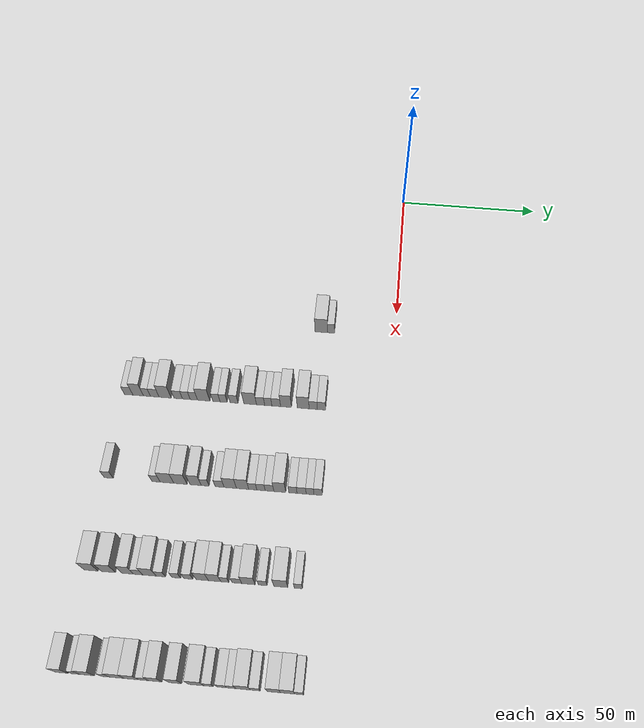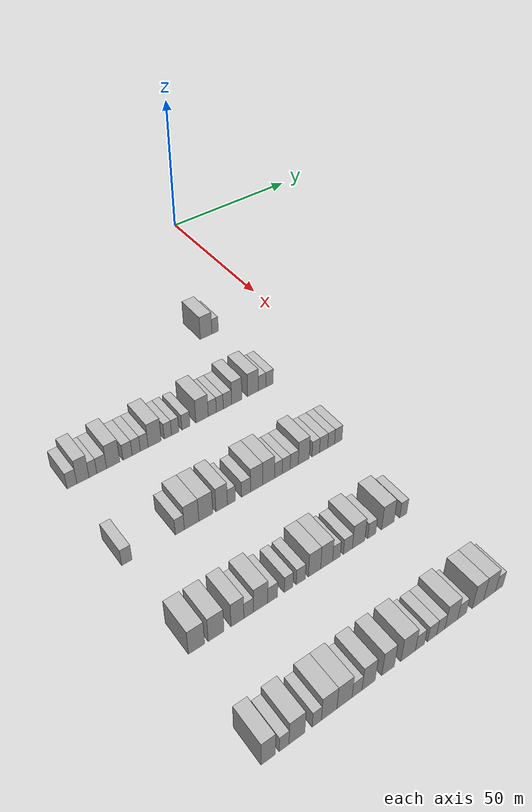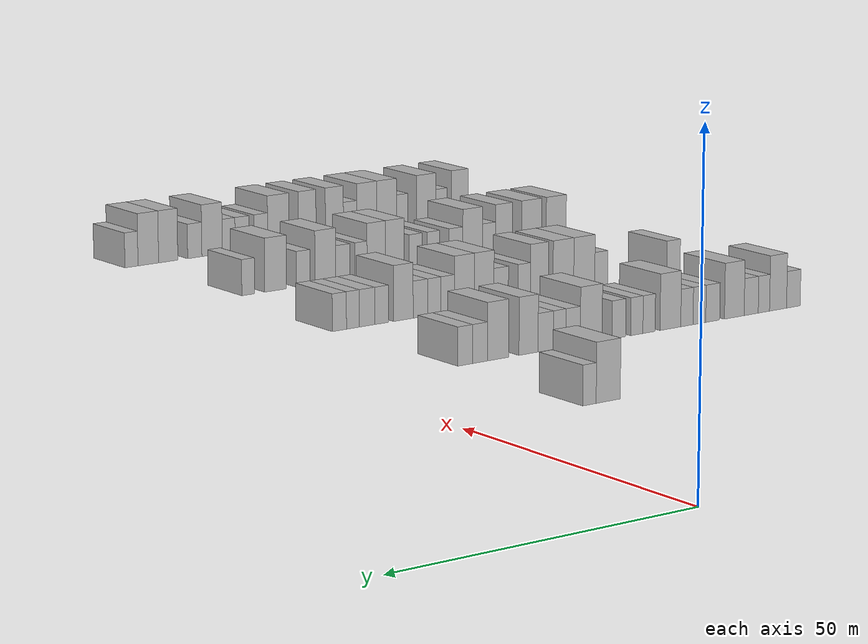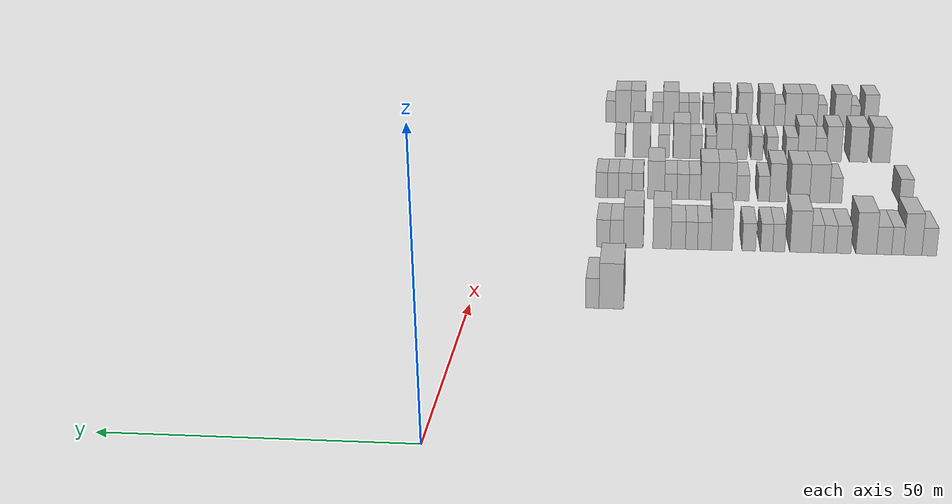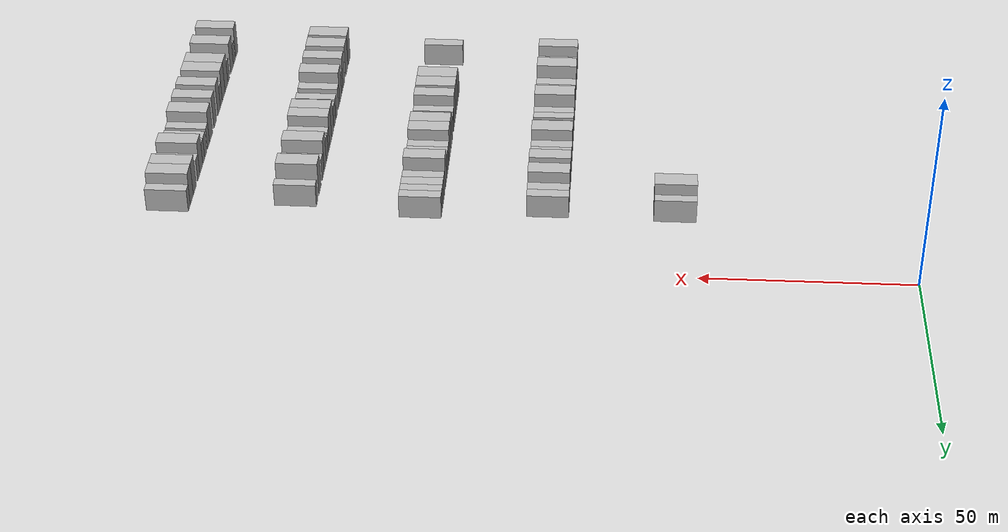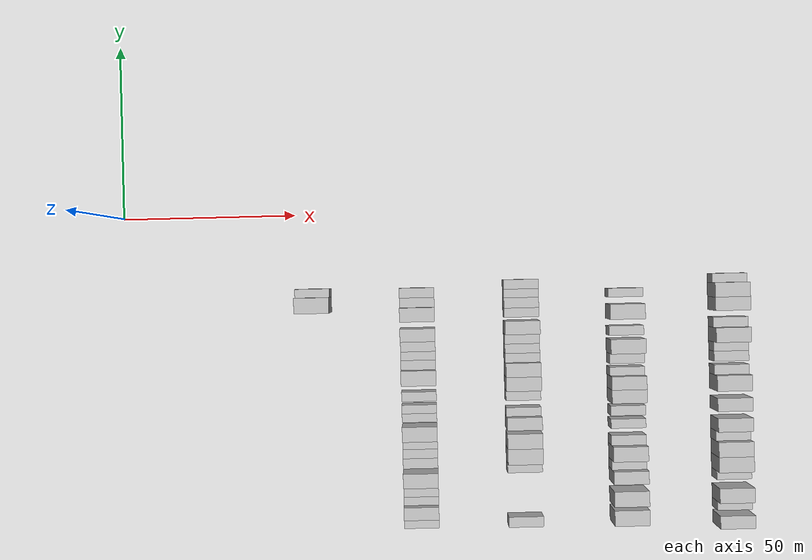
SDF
<sdf version="1.6">
 <world name="default">
  <model name="building_337">
   <static>1</static>
   <pose>55.0000 -26.2284 0 0.000000 0.000000 0.000000</pose>
   <link name="link">
    <pose>0 0 4.50 0 0 0</pose>
    <collision name="collision"><geometry><box><size>10.0000 4.4825 9.0000</size></box></geometry></collision>
    <visual name="visual">
     <cast_shadows>0</cast_shadows>
     <geometry><box><size>10.0000 4.4825 9.0000</size></box></geometry>
     <material>
      <script>
       <uri>model://HANNAS_wall/materials/scripts</uri>
       <uri>model://HANNAS_wall/materials/textures</uri>
       <name>vrc/HANNAS_wall</name>
      </script>
     </material>
    </visual>
   </link>
  </model>
  <model name="building_338">
   <static>1</static>
   <pose>55.0000 -22.7556 0 0.000000 0.000000 0.000000</pose>
   <link name="link">
    <pose>0 0 3.00 0 0 0</pose>
    <collision name="collision"><geometry><box><size>10.0000 2.4629 6.0000</size></box></geometry></collision>
    <visual name="visual">
     <cast_shadows>0</cast_shadows>
     <geometry><box><size>10.0000 2.4629 6.0000</size></box></geometry>
     <material>
      <script>
       <uri>model://HANNAS_wall/materials/scripts</uri>
       <uri>model://HANNAS_wall/materials/textures</uri>
       <name>vrc/HANNAS_wall</name>
      </script>
     </material>
    </visual>
   </link>
  </model>
  <model name="building_548">
   <static>1</static>
   <pose>85.0000 -89.4390 0 0.000000 0.000000 0.000000</pose>
   <link name="link">
    <pose>0 0 3.00 0 0 0</pose>
    <collision name="collision"><geometry><box><size>10.0000 2.9437 6.0000</size></box></geometry></collision>
    <visual name="visual">
     <cast_shadows>0</cast_shadows>
     <geometry><box><size>10.0000 2.9437 6.0000</size></box></geometry>
     <material>
      <script>
       <uri>model://HANNAS_wall/materials/scripts</uri>
       <uri>model://HANNAS_wall/materials/textures</uri>
       <name>vrc/HANNAS_wall</name>
      </script>
     </material>
    </visual>
   </link>
  </model>
  <model name="building_549">
   <static>1</static>
   <pose>85.0000 -86.1389 0 0.000000 0.000000 0.000000</pose>
   <link name="link">
    <pose>0 0 4.50 0 0 0</pose>
    <collision name="collision"><geometry><box><size>10.0000 3.6565 9.0000</size></box></geometry></collision>
    <visual name="visual">
     <cast_shadows>0</cast_shadows>
     <geometry><box><size>10.0000 3.6565 9.0000</size></box></geometry>
     <material>
      <script>
       <uri>model://HANNAS_wall/materials/scripts</uri>
       <uri>model://HANNAS_wall/materials/textures</uri>
       <name>vrc/HANNAS_wall</name>
      </script>
     </material>
    </visual>
   </link>
  </model>
  <model name="building_550">
   <static>1</static>
   <pose>85.0000 -83.1061 0 0.000000 0.000000 0.000000</pose>
   <link name="link">
    <pose>0 0 3.00 0 0 0</pose>
    <collision name="collision"><geometry><box><size>10.0000 2.4090 6.0000</size></box></geometry></collision>
    <visual name="visual">
     <cast_shadows>0</cast_shadows>
     <geometry><box><size>10.0000 2.4090 6.0000</size></box></geometry>
     <material>
      <script>
       <uri>model://HANNAS_wall/materials/scripts</uri>
       <uri>model://HANNAS_wall/materials/textures</uri>
       <name>vrc/HANNAS_wall</name>
      </script>
     </material>
    </visual>
   </link>
  </model>
  <model name="building_551">
   <static>1</static>
   <pose>85.0000 -80.4048 0 0.000000 0.000000 0.000000</pose>
   <link name="link">
    <pose>0 0 3.00 0 0 0</pose>
    <collision name="collision"><geometry><box><size>10.0000 2.9938 6.0000</size></box></geometry></collision>
    <visual name="visual">
     <cast_shadows>0</cast_shadows>
     <geometry><box><size>10.0000 2.9938 6.0000</size></box></geometry>
     <material>
      <script>
       <uri>model://HANNAS_wall/materials/scripts</uri>
       <uri>model://HANNAS_wall/materials/textures</uri>
       <name>vrc/HANNAS_wall</name>
      </script>
     </material>
    </visual>
   </link>
  </model>
  <model name="building_552">
   <static>1</static>
   <pose>85.0000 -76.8361 0 0.000000 0.000000 0.000000</pose>
   <link name="link">
    <pose>0 0 4.50 0 0 0</pose>
    <collision name="collision"><geometry><box><size>10.0000 4.1435 9.0000</size></box></geometry></collision>
    <visual name="visual">
     <cast_shadows>0</cast_shadows>
     <geometry><box><size>10.0000 4.1435 9.0000</size></box></geometry>
     <material>
      <script>
       <uri>model://HANNAS_wall/materials/scripts</uri>
       <uri>model://HANNAS_wall/materials/textures</uri>
       <name>vrc/HANNAS_wall</name>
      </script>
     </material>
    </visual>
   </link>
  </model>
  <model name="building_553">
   <static>1</static>
   <pose>85.0000 -72.3120 0 0.000000 0.000000 0.000000</pose>
   <link name="link">
    <pose>0 0 3.00 0 0 0</pose>
    <collision name="collision"><geometry><box><size>10.0000 2.9047 6.0000</size></box></geometry></collision>
    <visual name="visual">
     <cast_shadows>0</cast_shadows>
     <geometry><box><size>10.0000 2.9047 6.0000</size></box></geometry>
     <material>
      <script>
       <uri>model://HANNAS_wall/materials/scripts</uri>
       <uri>model://HANNAS_wall/materials/textures</uri>
       <name>vrc/HANNAS_wall</name>
      </script>
     </material>
    </visual>
   </link>
  </model>
  <model name="building_554">
   <static>1</static>
   <pose>85.0000 -69.5392 0 0.000000 0.000000 0.000000</pose>
   <link name="link">
    <pose>0 0 3.00 0 0 0</pose>
    <collision name="collision"><geometry><box><size>10.0000 2.6408 6.0000</size></box></geometry></collision>
    <visual name="visual">
     <cast_shadows>0</cast_shadows>
     <geometry><box><size>10.0000 2.6408 6.0000</size></box></geometry>
     <material>
      <script>
       <uri>model://HANNAS_wall/materials/scripts</uri>
       <uri>model://HANNAS_wall/materials/textures</uri>
       <name>vrc/HANNAS_wall</name>
      </script>
     </material>
    </visual>
   </link>
  </model>
  <model name="building_555">
   <static>1</static>
   <pose>85.0000 -66.9521 0 0.000000 0.000000 0.000000</pose>
   <link name="link">
    <pose>0 0 3.00 0 0 0</pose>
    <collision name="collision"><geometry><box><size>10.0000 2.5333 6.0000</size></box></geometry></collision>
    <visual name="visual">
     <cast_shadows>0</cast_shadows>
     <geometry><box><size>10.0000 2.5333 6.0000</size></box></geometry>
     <material>
      <script>
       <uri>model://HANNAS_wall/materials/scripts</uri>
       <uri>model://HANNAS_wall/materials/textures</uri>
       <name>vrc/HANNAS_wall</name>
      </script>
     </material>
    </visual>
   </link>
  </model>
  <model name="building_556">
   <static>1</static>
   <pose>85.0000 -63.5560 0 0.000000 0.000000 0.000000</pose>
   <link name="link">
    <pose>0 0 4.50 0 0 0</pose>
    <collision name="collision"><geometry><box><size>10.0000 4.2589 9.0000</size></box></geometry></collision>
    <visual name="visual">
     <cast_shadows>0</cast_shadows>
     <geometry><box><size>10.0000 4.2589 9.0000</size></box></geometry>
     <material>
      <script>
       <uri>model://HANNAS_wall/materials/scripts</uri>
       <uri>model://HANNAS_wall/materials/textures</uri>
       <name>vrc/HANNAS_wall</name>
      </script>
     </material>
    </visual>
   </link>
  </model>
  <model name="building_557">
   <static>1</static>
   <pose>85.0000 -59.1907 0 0.000000 0.000000 0.000000</pose>
   <link name="link">
    <pose>0 0 3.00 0 0 0</pose>
    <collision name="collision"><geometry><box><size>10.0000 2.4717 6.0000</size></box></geometry></collision>
    <visual name="visual">
     <cast_shadows>0</cast_shadows>
     <geometry><box><size>10.0000 2.4717 6.0000</size></box></geometry>
     <material>
      <script>
       <uri>model://HANNAS_wall/materials/scripts</uri>
       <uri>model://HANNAS_wall/materials/textures</uri>
       <name>vrc/HANNAS_wall</name>
      </script>
     </material>
    </visual>
   </link>
  </model>
  <model name="building_558">
   <static>1</static>
   <pose>85.0000 -56.7219 0 0.000000 0.000000 0.000000</pose>
   <link name="link">
    <pose>0 0 3.00 0 0 0</pose>
    <collision name="collision"><geometry><box><size>10.0000 2.4658 6.0000</size></box></geometry></collision>
    <visual name="visual">
     <cast_shadows>0</cast_shadows>
     <geometry><box><size>10.0000 2.4658 6.0000</size></box></geometry>
     <material>
      <script>
       <uri>model://HANNAS_wall/materials/scripts</uri>
       <uri>model://HANNAS_wall/materials/textures</uri>
       <name>vrc/HANNAS_wall</name>
      </script>
     </material>
    </visual>
   </link>
  </model>
  <model name="building_559">
   <static>1</static>
   <pose>85.0000 -53.1243 0 0.000000 0.000000 0.000000</pose>
   <link name="link">
    <pose>0 0 3.00 0 0 0</pose>
    <collision name="collision"><geometry><box><size>10.0000 2.7295 6.0000</size></box></geometry></collision>
    <visual name="visual">
     <cast_shadows>0</cast_shadows>
     <geometry><box><size>10.0000 2.7295 6.0000</size></box></geometry>
     <material>
      <script>
       <uri>model://HANNAS_wall/materials/scripts</uri>
       <uri>model://HANNAS_wall/materials/textures</uri>
       <name>vrc/HANNAS_wall</name>
      </script>
     </material>
    </visual>
   </link>
  </model>
  <model name="building_560">
   <static>1</static>
   <pose>85.0000 -47.6033 0 0.000000 0.000000 0.000000</pose>
   <link name="link">
    <pose>0 0 4.50 0 0 0</pose>
    <collision name="collision"><geometry><box><size>10.0000 4.3124 9.0000</size></box></geometry></collision>
    <visual name="visual">
     <cast_shadows>0</cast_shadows>
     <geometry><box><size>10.0000 4.3124 9.0000</size></box></geometry>
     <material>
      <script>
       <uri>model://HANNAS_wall/materials/scripts</uri>
       <uri>model://HANNAS_wall/materials/textures</uri>
       <name>vrc/HANNAS_wall</name>
      </script>
     </material>
    </visual>
   </link>
  </model>
  <model name="building_561">
   <static>1</static>
   <pose>85.0000 -44.0436 0 0.000000 0.000000 0.000000</pose>
   <link name="link">
    <pose>0 0 3.00 0 0 0</pose>
    <collision name="collision"><geometry><box><size>10.0000 2.8070 6.0000</size></box></geometry></collision>
    <visual name="visual">
     <cast_shadows>0</cast_shadows>
     <geometry><box><size>10.0000 2.8070 6.0000</size></box></geometry>
     <material>
      <script>
       <uri>model://HANNAS_wall/materials/scripts</uri>
       <uri>model://HANNAS_wall/materials/textures</uri>
       <name>vrc/HANNAS_wall</name>
      </script>
     </material>
    </visual>
   </link>
  </model>
  <model name="building_562">
   <static>1</static>
   <pose>85.0000 -41.4100 0 0.000000 0.000000 0.000000</pose>
   <link name="link">
    <pose>0 0 3.00 0 0 0</pose>
    <collision name="collision"><geometry><box><size>10.0000 2.4603 6.0000</size></box></geometry></collision>
    <visual name="visual">
     <cast_shadows>0</cast_shadows>
     <geometry><box><size>10.0000 2.4603 6.0000</size></box></geometry>
     <material>
      <script>
       <uri>model://HANNAS_wall/materials/scripts</uri>
       <uri>model://HANNAS_wall/materials/textures</uri>
       <name>vrc/HANNAS_wall</name>
      </script>
     </material>
    </visual>
   </link>
  </model>
  <model name="building_563">
   <static>1</static>
   <pose>85.0000 -38.6884 0 0.000000 0.000000 0.000000</pose>
   <link name="link">
    <pose>0 0 3.00 0 0 0</pose>
    <collision name="collision"><geometry><box><size>10.0000 2.9829 6.0000</size></box></geometry></collision>
    <visual name="visual">
     <cast_shadows>0</cast_shadows>
     <geometry><box><size>10.0000 2.9829 6.0000</size></box></geometry>
     <material>
      <script>
       <uri>model://HANNAS_wall/materials/scripts</uri>
       <uri>model://HANNAS_wall/materials/textures</uri>
       <name>vrc/HANNAS_wall</name>
      </script>
     </material>
    </visual>
   </link>
  </model>
  <model name="building_564">
   <static>1</static>
   <pose>85.0000 -35.3502 0 0.000000 0.000000 0.000000</pose>
   <link name="link">
    <pose>0 0 4.50 0 0 0</pose>
    <collision name="collision"><geometry><box><size>10.0000 3.6935 9.0000</size></box></geometry></collision>
    <visual name="visual">
     <cast_shadows>0</cast_shadows>
     <geometry><box><size>10.0000 3.6935 9.0000</size></box></geometry>
     <material>
      <script>
       <uri>model://HANNAS_wall/materials/scripts</uri>
       <uri>model://HANNAS_wall/materials/textures</uri>
       <name>vrc/HANNAS_wall</name>
      </script>
     </material>
    </visual>
   </link>
  </model>
  <model name="building_565">
   <static>1</static>
   <pose>85.0000 -29.4945 0 0.000000 0.000000 0.000000</pose>
   <link name="link">
    <pose>0 0 4.50 0 0 0</pose>
    <collision name="collision"><geometry><box><size>10.0000 4.0180 9.0000</size></box></geometry></collision>
    <visual name="visual">
     <cast_shadows>0</cast_shadows>
     <geometry><box><size>10.0000 4.0180 9.0000</size></box></geometry>
     <material>
      <script>
       <uri>model://HANNAS_wall/materials/scripts</uri>
       <uri>model://HANNAS_wall/materials/textures</uri>
       <name>vrc/HANNAS_wall</name>
      </script>
     </material>
    </visual>
   </link>
  </model>
  <model name="building_566">
   <static>1</static>
   <pose>85.0000 -26.0917 0 0.000000 0.000000 0.000000</pose>
   <link name="link">
    <pose>0 0 3.00 0 0 0</pose>
    <collision name="collision"><geometry><box><size>10.0000 2.7875 6.0000</size></box></geometry></collision>
    <visual name="visual">
     <cast_shadows>0</cast_shadows>
     <geometry><box><size>10.0000 2.7875 6.0000</size></box></geometry>
     <material>
      <script>
       <uri>model://HANNAS_wall/materials/scripts</uri>
       <uri>model://HANNAS_wall/materials/textures</uri>
       <name>vrc/HANNAS_wall</name>
      </script>
     </material>
    </visual>
   </link>
  </model>
  <model name="building_567">
   <static>1</static>
   <pose>85.0000 -23.2987 0 0.000000 0.000000 0.000000</pose>
   <link name="link">
    <pose>0 0 3.00 0 0 0</pose>
    <collision name="collision"><geometry><box><size>10.0000 2.7985 6.0000</size></box></geometry></collision>
    <visual name="visual">
     <cast_shadows>0</cast_shadows>
     <geometry><box><size>10.0000 2.7985 6.0000</size></box></geometry>
     <material>
      <script>
       <uri>model://HANNAS_wall/materials/scripts</uri>
       <uri>model://HANNAS_wall/materials/textures</uri>
       <name>vrc/HANNAS_wall</name>
      </script>
     </material>
    </visual>
   </link>
  </model>
  <model name="building_786">
   <static>1</static>
   <pose>115.0000 -89.8218 0 0.000000 0.000000 0.000000</pose>
   <link name="link">
    <pose>0 0 3.00 0 0 0</pose>
    <collision name="collision"><geometry><box><size>10.0000 2.9431 6.0000</size></box></geometry></collision>
    <visual name="visual">
     <cast_shadows>0</cast_shadows>
     <geometry><box><size>10.0000 2.9431 6.0000</size></box></geometry>
     <material>
      <script>
       <uri>model://HANNAS_wall/materials/scripts</uri>
       <uri>model://HANNAS_wall/materials/textures</uri>
       <name>vrc/HANNAS_wall</name>
      </script>
     </material>
    </visual>
   </link>
  </model>
  <model name="building_787">
   <static>1</static>
   <pose>115.0000 -74.2443 0 0.000000 0.000000 0.000000</pose>
   <link name="link">
    <pose>0 0 3.00 0 0 0</pose>
    <collision name="collision"><geometry><box><size>10.0000 2.7373 6.0000</size></box></geometry></collision>
    <visual name="visual">
     <cast_shadows>0</cast_shadows>
     <geometry><box><size>10.0000 2.7373 6.0000</size></box></geometry>
     <material>
      <script>
       <uri>model://HANNAS_wall/materials/scripts</uri>
       <uri>model://HANNAS_wall/materials/textures</uri>
       <name>vrc/HANNAS_wall</name>
      </script>
     </material>
    </visual>
   </link>
  </model>
  <model name="building_788">
   <static>1</static>
   <pose>115.0000 -70.6516 0 0.000000 0.000000 0.000000</pose>
   <link name="link">
    <pose>0 0 4.50 0 0 0</pose>
    <collision name="collision"><geometry><box><size>10.0000 4.4482 9.0000</size></box></geometry></collision>
    <visual name="visual">
     <cast_shadows>0</cast_shadows>
     <geometry><box><size>10.0000 4.4482 9.0000</size></box></geometry>
     <material>
      <script>
       <uri>model://HANNAS_wall/materials/scripts</uri>
       <uri>model://HANNAS_wall/materials/textures</uri>
       <name>vrc/HANNAS_wall</name>
      </script>
     </material>
    </visual>
   </link>
  </model>
  <model name="building_789">
   <static>1</static>
   <pose>115.0000 -66.2643 0 0.000000 0.000000 0.000000</pose>
   <link name="link">
    <pose>0 0 4.50 0 0 0</pose>
    <collision name="collision"><geometry><box><size>10.0000 4.3263 9.0000</size></box></geometry></collision>
    <visual name="visual">
     <cast_shadows>0</cast_shadows>
     <geometry><box><size>10.0000 4.3263 9.0000</size></box></geometry>
     <material>
      <script>
       <uri>model://HANNAS_wall/materials/scripts</uri>
       <uri>model://HANNAS_wall/materials/textures</uri>
       <name>vrc/HANNAS_wall</name>
      </script>
     </material>
    </visual>
   </link>
  </model>
  <model name="building_790">
   <static>1</static>
   <pose>115.0000 -61.2726 0 0.000000 0.000000 0.000000</pose>
   <link name="link">
    <pose>0 0 4.50 0 0 0</pose>
    <collision name="collision"><geometry><box><size>10.0000 3.6573 9.0000</size></box></geometry></collision>
    <visual name="visual">
     <cast_shadows>0</cast_shadows>
     <geometry><box><size>10.0000 3.6573 9.0000</size></box></geometry>
     <material>
      <script>
       <uri>model://HANNAS_wall/materials/scripts</uri>
       <uri>model://HANNAS_wall/materials/textures</uri>
       <name>vrc/HANNAS_wall</name>
      </script>
     </material>
    </visual>
   </link>
  </model>
  <model name="building_791">
   <static>1</static>
   <pose>115.0000 -58.1646 0 0.000000 0.000000 0.000000</pose>
   <link name="link">
    <pose>0 0 3.00 0 0 0</pose>
    <collision name="collision"><geometry><box><size>10.0000 2.5587 6.0000</size></box></geometry></collision>
    <visual name="visual">
     <cast_shadows>0</cast_shadows>
     <geometry><box><size>10.0000 2.5587 6.0000</size></box></geometry>
     <material>
      <script>
       <uri>model://HANNAS_wall/materials/scripts</uri>
       <uri>model://HANNAS_wall/materials/textures</uri>
       <name>vrc/HANNAS_wall</name>
      </script>
     </material>
    </visual>
   </link>
  </model>
  <model name="building_792">
   <static>1</static>
   <pose>115.0000 -53.4179 0 0.000000 0.000000 0.000000</pose>
   <link name="link">
    <pose>0 0 3.00 0 0 0</pose>
    <collision name="collision"><geometry><box><size>10.0000 2.9348 6.0000</size></box></geometry></collision>
    <visual name="visual">
     <cast_shadows>0</cast_shadows>
     <geometry><box><size>10.0000 2.9348 6.0000</size></box></geometry>
     <material>
      <script>
       <uri>model://HANNAS_wall/materials/scripts</uri>
       <uri>model://HANNAS_wall/materials/textures</uri>
       <name>vrc/HANNAS_wall</name>
      </script>
     </material>
    </visual>
   </link>
  </model>
  <model name="building_793">
   <static>1</static>
   <pose>115.0000 -49.9457 0 0.000000 0.000000 0.000000</pose>
   <link name="link">
    <pose>0 0 4.50 0 0 0</pose>
    <collision name="collision"><geometry><box><size>10.0000 4.0096 9.0000</size></box></geometry></collision>
    <visual name="visual">
     <cast_shadows>0</cast_shadows>
     <geometry><box><size>10.0000 4.0096 9.0000</size></box></geometry>
     <material>
      <script>
       <uri>model://HANNAS_wall/materials/scripts</uri>
       <uri>model://HANNAS_wall/materials/textures</uri>
       <name>vrc/HANNAS_wall</name>
      </script>
     </material>
    </visual>
   </link>
  </model>
  <model name="building_794">
   <static>1</static>
   <pose>115.0000 -45.9501 0 0.000000 0.000000 0.000000</pose>
   <link name="link">
    <pose>0 0 4.50 0 0 0</pose>
    <collision name="collision"><geometry><box><size>10.0000 3.9817 9.0000</size></box></geometry></collision>
    <visual name="visual">
     <cast_shadows>0</cast_shadows>
     <geometry><box><size>10.0000 3.9817 9.0000</size></box></geometry>
     <material>
      <script>
       <uri>model://HANNAS_wall/materials/scripts</uri>
       <uri>model://HANNAS_wall/materials/textures</uri>
       <name>vrc/HANNAS_wall</name>
      </script>
     </material>
    </visual>
   </link>
  </model>
  <model name="building_795">
   <static>1</static>
   <pose>115.0000 -42.6340 0 0.000000 0.000000 0.000000</pose>
   <link name="link">
    <pose>0 0 3.00 0 0 0</pose>
    <collision name="collision"><geometry><box><size>10.0000 2.6505 6.0000</size></box></geometry></collision>
    <visual name="visual">
     <cast_shadows>0</cast_shadows>
     <geometry><box><size>10.0000 2.6505 6.0000</size></box></geometry>
     <material>
      <script>
       <uri>model://HANNAS_wall/materials/scripts</uri>
       <uri>model://HANNAS_wall/materials/textures</uri>
       <name>vrc/HANNAS_wall</name>
      </script>
     </material>
    </visual>
   </link>
  </model>
  <model name="building_796">
   <static>1</static>
   <pose>115.0000 -39.9617 0 0.000000 0.000000 0.000000</pose>
   <link name="link">
    <pose>0 0 3.00 0 0 0</pose>
    <collision name="collision"><geometry><box><size>10.0000 2.6940 6.0000</size></box></geometry></collision>
    <visual name="visual">
     <cast_shadows>0</cast_shadows>
     <geometry><box><size>10.0000 2.6940 6.0000</size></box></geometry>
     <material>
      <script>
       <uri>model://HANNAS_wall/materials/scripts</uri>
       <uri>model://HANNAS_wall/materials/textures</uri>
       <name>vrc/HANNAS_wall</name>
      </script>
     </material>
    </visual>
   </link>
  </model>
  <model name="building_797">
   <static>1</static>
   <pose>115.0000 -37.2013 0 0.000000 0.000000 0.000000</pose>
   <link name="link">
    <pose>0 0 3.00 0 0 0</pose>
    <collision name="collision"><geometry><box><size>10.0000 2.8269 6.0000</size></box></geometry></collision>
    <visual name="visual">
     <cast_shadows>0</cast_shadows>
     <geometry><box><size>10.0000 2.8269 6.0000</size></box></geometry>
     <material>
      <script>
       <uri>model://HANNAS_wall/materials/scripts</uri>
       <uri>model://HANNAS_wall/materials/textures</uri>
       <name>vrc/HANNAS_wall</name>
      </script>
     </material>
    </visual>
   </link>
  </model>
  <model name="building_798">
   <static>1</static>
   <pose>115.0000 -33.8674 0 0.000000 0.000000 0.000000</pose>
   <link name="link">
    <pose>0 0 4.50 0 0 0</pose>
    <collision name="collision"><geometry><box><size>10.0000 3.8409 9.0000</size></box></geometry></collision>
    <visual name="visual">
     <cast_shadows>0</cast_shadows>
     <geometry><box><size>10.0000 3.8409 9.0000</size></box></geometry>
     <material>
      <script>
       <uri>model://HANNAS_wall/materials/scripts</uri>
       <uri>model://HANNAS_wall/materials/textures</uri>
       <name>vrc/HANNAS_wall</name>
      </script>
     </material>
    </visual>
   </link>
  </model>
  <model name="building_799">
   <static>1</static>
   <pose>115.0000 -29.6203 0 0.000000 0.000000 0.000000</pose>
   <link name="link">
    <pose>0 0 3.00 0 0 0</pose>
    <collision name="collision"><geometry><box><size>10.0000 2.6532 6.0000</size></box></geometry></collision>
    <visual name="visual">
     <cast_shadows>0</cast_shadows>
     <geometry><box><size>10.0000 2.6532 6.0000</size></box></geometry>
     <material>
      <script>
       <uri>model://HANNAS_wall/materials/scripts</uri>
       <uri>model://HANNAS_wall/materials/textures</uri>
       <name>vrc/HANNAS_wall</name>
      </script>
     </material>
    </visual>
   </link>
  </model>
  <model name="building_800">
   <static>1</static>
   <pose>115.0000 -26.8159 0 0.000000 0.000000 0.000000</pose>
   <link name="link">
    <pose>0 0 3.00 0 0 0</pose>
    <collision name="collision"><geometry><box><size>10.0000 2.9557 6.0000</size></box></geometry></collision>
    <visual name="visual">
     <cast_shadows>0</cast_shadows>
     <geometry><box><size>10.0000 2.9557 6.0000</size></box></geometry>
     <material>
      <script>
       <uri>model://HANNAS_wall/materials/scripts</uri>
       <uri>model://HANNAS_wall/materials/textures</uri>
       <name>vrc/HANNAS_wall</name>
      </script>
     </material>
    </visual>
   </link>
  </model>
  <model name="building_801">
   <static>1</static>
   <pose>115.0000 -24.0955 0 0.000000 0.000000 0.000000</pose>
   <link name="link">
    <pose>0 0 3.00 0 0 0</pose>
    <collision name="collision"><geometry><box><size>10.0000 2.4850 6.0000</size></box></geometry></collision>
    <visual name="visual">
     <cast_shadows>0</cast_shadows>
     <geometry><box><size>10.0000 2.4850 6.0000</size></box></geometry>
     <material>
      <script>
       <uri>model://HANNAS_wall/materials/scripts</uri>
       <uri>model://HANNAS_wall/materials/textures</uri>
       <name>vrc/HANNAS_wall</name>
      </script>
     </material>
    </visual>
   </link>
  </model>
  <model name="building_802">
   <static>1</static>
   <pose>115.0000 -21.4993 0 0.000000 0.000000 0.000000</pose>
   <link name="link">
    <pose>0 0 3.00 0 0 0</pose>
    <collision name="collision"><geometry><box><size>10.0000 2.7074 6.0000</size></box></geometry></collision>
    <visual name="visual">
     <cast_shadows>0</cast_shadows>
     <geometry><box><size>10.0000 2.7074 6.0000</size></box></geometry>
     <material>
      <script>
       <uri>model://HANNAS_wall/materials/scripts</uri>
       <uri>model://HANNAS_wall/materials/textures</uri>
       <name>vrc/HANNAS_wall</name>
      </script>
     </material>
    </visual>
   </link>
  </model>
  <model name="building_1009">
   <static>1</static>
   <pose>145.0000 -88.8079 0 0.000000 0.000000 0.000000</pose>
   <link name="link">
    <pose>0 0 4.50 0 0 0</pose>
    <collision name="collision"><geometry><box><size>10.0000 4.4188 9.0000</size></box></geometry></collision>
    <visual name="visual">
     <cast_shadows>0</cast_shadows>
     <geometry><box><size>10.0000 4.4188 9.0000</size></box></geometry>
     <material>
      <script>
       <uri>model://HANNAS_wall/materials/scripts</uri>
       <uri>model://HANNAS_wall/materials/textures</uri>
       <name>vrc/HANNAS_wall</name>
      </script>
     </material>
    </visual>
   </link>
  </model>
  <model name="building_1010">
   <static>1</static>
   <pose>145.0000 -83.3942 0 0.000000 0.000000 0.000000</pose>
   <link name="link">
    <pose>0 0 4.50 0 0 0</pose>
    <collision name="collision"><geometry><box><size>10.0000 4.4086 9.0000</size></box></geometry></collision>
    <visual name="visual">
     <cast_shadows>0</cast_shadows>
     <geometry><box><size>10.0000 4.4086 9.0000</size></box></geometry>
     <material>
      <script>
       <uri>model://HANNAS_wall/materials/scripts</uri>
       <uri>model://HANNAS_wall/materials/textures</uri>
       <name>vrc/HANNAS_wall</name>
      </script>
     </material>
    </visual>
   </link>
  </model>
  <model name="building_1011">
   <static>1</static>
   <pose>145.0000 -77.3440 0 0.000000 0.000000 0.000000</pose>
   <link name="link">
    <pose>0 0 4.50 0 0 0</pose>
    <collision name="collision"><geometry><box><size>10.0000 3.6917 9.0000</size></box></geometry></collision>
    <visual name="visual">
     <cast_shadows>0</cast_shadows>
     <geometry><box><size>10.0000 3.6917 9.0000</size></box></geometry>
     <material>
      <script>
       <uri>model://HANNAS_wall/materials/scripts</uri>
       <uri>model://HANNAS_wall/materials/textures</uri>
       <name>vrc/HANNAS_wall</name>
      </script>
     </material>
    </visual>
   </link>
  </model>
  <model name="building_1012">
   <static>1</static>
   <pose>145.0000 -74.1107 0 0.000000 0.000000 0.000000</pose>
   <link name="link">
    <pose>0 0 3.00 0 0 0</pose>
    <collision name="collision"><geometry><box><size>10.0000 2.7749 6.0000</size></box></geometry></collision>
    <visual name="visual">
     <cast_shadows>0</cast_shadows>
     <geometry><box><size>10.0000 2.7749 6.0000</size></box></geometry>
     <material>
      <script>
       <uri>model://HANNAS_wall/materials/scripts</uri>
       <uri>model://HANNAS_wall/materials/textures</uri>
       <name>vrc/HANNAS_wall</name>
      </script>
     </material>
    </visual>
   </link>
  </model>
  <model name="building_1013">
   <static>1</static>
   <pose>145.0000 -70.6111 0 0.000000 0.000000 0.000000</pose>
   <link name="link">
    <pose>0 0 4.50 0 0 0</pose>
    <collision name="collision"><geometry><box><size>10.0000 4.2244 9.0000</size></box></geometry></collision>
    <visual name="visual">
     <cast_shadows>0</cast_shadows>
     <geometry><box><size>10.0000 4.2244 9.0000</size></box></geometry>
     <material>
      <script>
       <uri>model://HANNAS_wall/materials/scripts</uri>
       <uri>model://HANNAS_wall/materials/textures</uri>
       <name>vrc/HANNAS_wall</name>
      </script>
     </material>
    </visual>
   </link>
  </model>
  <model name="building_1014">
   <static>1</static>
   <pose>145.0000 -67.0311 0 0.000000 0.000000 0.000000</pose>
   <link name="link">
    <pose>0 0 3.00 0 0 0</pose>
    <collision name="collision"><geometry><box><size>10.0000 2.9357 6.0000</size></box></geometry></collision>
    <visual name="visual">
     <cast_shadows>0</cast_shadows>
     <geometry><box><size>10.0000 2.9357 6.0000</size></box></geometry>
     <material>
      <script>
       <uri>model://HANNAS_wall/materials/scripts</uri>
       <uri>model://HANNAS_wall/materials/textures</uri>
       <name>vrc/HANNAS_wall</name>
      </script>
     </material>
    </visual>
   </link>
  </model>
  <model name="building_1015">
   <static>1</static>
   <pose>145.0000 -62.2265 0 0.000000 0.000000 0.000000</pose>
   <link name="link">
    <pose>0 0 3.00 0 0 0</pose>
    <collision name="collision"><geometry><box><size>10.0000 2.6735 6.0000</size></box></geometry></collision>
    <visual name="visual">
     <cast_shadows>0</cast_shadows>
     <geometry><box><size>10.0000 2.6735 6.0000</size></box></geometry>
     <material>
      <script>
       <uri>model://HANNAS_wall/materials/scripts</uri>
       <uri>model://HANNAS_wall/materials/textures</uri>
       <name>vrc/HANNAS_wall</name>
      </script>
     </material>
    </visual>
   </link>
  </model>
  <model name="building_1016">
   <static>1</static>
   <pose>145.0000 -58.4896 0 0.000000 0.000000 0.000000</pose>
   <link name="link">
    <pose>0 0 3.00 0 0 0</pose>
    <collision name="collision"><geometry><box><size>10.0000 2.8003 6.0000</size></box></geometry></collision>
    <visual name="visual">
     <cast_shadows>0</cast_shadows>
     <geometry><box><size>10.0000 2.8003 6.0000</size></box></geometry>
     <material>
      <script>
       <uri>model://HANNAS_wall/materials/scripts</uri>
       <uri>model://HANNAS_wall/materials/textures</uri>
       <name>vrc/HANNAS_wall</name>
      </script>
     </material>
    </visual>
   </link>
  </model>
  <model name="building_1017">
   <static>1</static>
   <pose>145.0000 -54.1736 0 0.000000 0.000000 0.000000</pose>
   <link name="link">
    <pose>0 0 4.50 0 0 0</pose>
    <collision name="collision"><geometry><box><size>10.0000 3.8317 9.0000</size></box></geometry></collision>
    <visual name="visual">
     <cast_shadows>0</cast_shadows>
     <geometry><box><size>10.0000 3.8317 9.0000</size></box></geometry>
     <material>
      <script>
       <uri>model://HANNAS_wall/materials/scripts</uri>
       <uri>model://HANNAS_wall/materials/textures</uri>
       <name>vrc/HANNAS_wall</name>
      </script>
     </material>
    </visual>
   </link>
  </model>
  <model name="building_1018">
   <static>1</static>
   <pose>145.0000 -50.3466 0 0.000000 0.000000 0.000000</pose>
   <link name="link">
    <pose>0 0 4.50 0 0 0</pose>
    <collision name="collision"><geometry><box><size>10.0000 3.8224 9.0000</size></box></geometry></collision>
    <visual name="visual">
     <cast_shadows>0</cast_shadows>
     <geometry><box><size>10.0000 3.8224 9.0000</size></box></geometry>
     <material>
      <script>
       <uri>model://HANNAS_wall/materials/scripts</uri>
       <uri>model://HANNAS_wall/materials/textures</uri>
       <name>vrc/HANNAS_wall</name>
      </script>
     </material>
    </visual>
   </link>
  </model>
  <model name="building_1019">
   <static>1</static>
   <pose>145.0000 -47.1930 0 0.000000 0.000000 0.000000</pose>
   <link name="link">
    <pose>0 0 3.00 0 0 0</pose>
    <collision name="collision"><geometry><box><size>10.0000 2.4847 6.0000</size></box></geometry></collision>
    <visual name="visual">
     <cast_shadows>0</cast_shadows>
     <geometry><box><size>10.0000 2.4847 6.0000</size></box></geometry>
     <material>
      <script>
       <uri>model://HANNAS_wall/materials/scripts</uri>
       <uri>model://HANNAS_wall/materials/textures</uri>
       <name>vrc/HANNAS_wall</name>
      </script>
     </material>
    </visual>
   </link>
  </model>
  <model name="building_1020">
   <static>1</static>
   <pose>145.0000 -43.4732 0 0.000000 0.000000 0.000000</pose>
   <link name="link">
    <pose>0 0 3.00 0 0 0</pose>
    <collision name="collision"><geometry><box><size>10.0000 2.9550 6.0000</size></box></geometry></collision>
    <visual name="visual">
     <cast_shadows>0</cast_shadows>
     <geometry><box><size>10.0000 2.9550 6.0000</size></box></geometry>
     <material>
      <script>
       <uri>model://HANNAS_wall/materials/scripts</uri>
       <uri>model://HANNAS_wall/materials/textures</uri>
       <name>vrc/HANNAS_wall</name>
      </script>
     </material>
    </visual>
   </link>
  </model>
  <model name="building_1021">
   <static>1</static>
   <pose>145.0000 -39.9174 0 0.000000 0.000000 0.000000</pose>
   <link name="link">
    <pose>0 0 4.50 0 0 0</pose>
    <collision name="collision"><geometry><box><size>10.0000 4.1565 9.0000</size></box></geometry></collision>
    <visual name="visual">
     <cast_shadows>0</cast_shadows>
     <geometry><box><size>10.0000 4.1565 9.0000</size></box></geometry>
     <material>
      <script>
       <uri>model://HANNAS_wall/materials/scripts</uri>
       <uri>model://HANNAS_wall/materials/textures</uri>
       <name>vrc/HANNAS_wall</name>
      </script>
     </material>
    </visual>
   </link>
  </model>
  <model name="building_1022">
   <static>1</static>
   <pose>145.0000 -35.4860 0 0.000000 0.000000 0.000000</pose>
   <link name="link">
    <pose>0 0 3.00 0 0 0</pose>
    <collision name="collision"><geometry><box><size>10.0000 2.7063 6.0000</size></box></geometry></collision>
    <visual name="visual">
     <cast_shadows>0</cast_shadows>
     <geometry><box><size>10.0000 2.7063 6.0000</size></box></geometry>
     <material>
      <script>
       <uri>model://HANNAS_wall/materials/scripts</uri>
       <uri>model://HANNAS_wall/materials/textures</uri>
       <name>vrc/HANNAS_wall</name>
      </script>
     </material>
    </visual>
   </link>
  </model>
  <model name="building_1023">
   <static>1</static>
   <pose>145.0000 -29.9791 0 0.000000 0.000000 0.000000</pose>
   <link name="link">
    <pose>0 0 4.50 0 0 0</pose>
    <collision name="collision"><geometry><box><size>10.0000 4.3074 9.0000</size></box></geometry></collision>
    <visual name="visual">
     <cast_shadows>0</cast_shadows>
     <geometry><box><size>10.0000 4.3074 9.0000</size></box></geometry>
     <material>
      <script>
       <uri>model://HANNAS_wall/materials/scripts</uri>
       <uri>model://HANNAS_wall/materials/textures</uri>
       <name>vrc/HANNAS_wall</name>
      </script>
     </material>
    </visual>
   </link>
  </model>
  <model name="building_1024">
   <static>1</static>
   <pose>145.0000 -24.5778 0 0.000000 0.000000 0.000000</pose>
   <link name="link">
    <pose>0 0 3.00 0 0 0</pose>
    <collision name="collision"><geometry><box><size>10.0000 2.4952 6.0000</size></box></geometry></collision>
    <visual name="visual">
     <cast_shadows>0</cast_shadows>
     <geometry><box><size>10.0000 2.4952 6.0000</size></box></geometry>
     <material>
      <script>
       <uri>model://HANNAS_wall/materials/scripts</uri>
       <uri>model://HANNAS_wall/materials/textures</uri>
       <name>vrc/HANNAS_wall</name>
      </script>
     </material>
    </visual>
   </link>
  </model>
  <model name="building_1243">
   <static>1</static>
   <pose>175.0000 -90.6469 0 0.000000 0.000000 0.000000</pose>
   <link name="link">
    <pose>0 0 4.50 0 0 0</pose>
    <collision name="collision"><geometry><box><size>10.0000 3.7062 9.0000</size></box></geometry></collision>
    <visual name="visual">
     <cast_shadows>0</cast_shadows>
     <geometry><box><size>10.0000 3.7062 9.0000</size></box></geometry>
     <material>
      <script>
       <uri>model://HANNAS_wall/materials/scripts</uri>
       <uri>model://HANNAS_wall/materials/textures</uri>
       <name>vrc/HANNAS_wall</name>
      </script>
     </material>
    </visual>
   </link>
  </model>
  <model name="building_1244">
   <static>1</static>
   <pose>175.0000 -86.5012 0 0.000000 0.000000 0.000000</pose>
   <link name="link">
    <pose>0 0 3.00 0 0 0</pose>
    <collision name="collision"><geometry><box><size>10.0000 2.5851 6.0000</size></box></geometry></collision>
    <visual name="visual">
     <cast_shadows>0</cast_shadows>
     <geometry><box><size>10.0000 2.5851 6.0000</size></box></geometry>
     <material>
      <script>
       <uri>model://HANNAS_wall/materials/scripts</uri>
       <uri>model://HANNAS_wall/materials/textures</uri>
       <name>vrc/HANNAS_wall</name>
      </script>
     </material>
    </visual>
   </link>
  </model>
  <model name="building_1245">
   <static>1</static>
   <pose>175.0000 -83.0882 0 0.000000 0.000000 0.000000</pose>
   <link name="link">
    <pose>0 0 4.50 0 0 0</pose>
    <collision name="collision"><geometry><box><size>10.0000 4.2407 9.0000</size></box></geometry></collision>
    <visual name="visual">
     <cast_shadows>0</cast_shadows>
     <geometry><box><size>10.0000 4.2407 9.0000</size></box></geometry>
     <material>
      <script>
       <uri>model://HANNAS_wall/materials/scripts</uri>
       <uri>model://HANNAS_wall/materials/textures</uri>
       <name>vrc/HANNAS_wall</name>
      </script>
     </material>
    </visual>
   </link>
  </model>
  <model name="building_1246">
   <static>1</static>
   <pose>175.0000 -77.7177 0 0.000000 0.000000 0.000000</pose>
   <link name="link">
    <pose>0 0 3.00 0 0 0</pose>
    <collision name="collision"><geometry><box><size>10.0000 2.5003 6.0000</size></box></geometry></collision>
    <visual name="visual">
     <cast_shadows>0</cast_shadows>
     <geometry><box><size>10.0000 2.5003 6.0000</size></box></geometry>
     <material>
      <script>
       <uri>model://HANNAS_wall/materials/scripts</uri>
       <uri>model://HANNAS_wall/materials/textures</uri>
       <name>vrc/HANNAS_wall</name>
      </script>
     </material>
    </visual>
   </link>
  </model>
  <model name="building_1247">
   <static>1</static>
   <pose>175.0000 -74.2879 0 0.000000 0.000000 0.000000</pose>
   <link name="link">
    <pose>0 0 4.50 0 0 0</pose>
    <collision name="collision"><geometry><box><size>10.0000 4.3592 9.0000</size></box></geometry></collision>
    <visual name="visual">
     <cast_shadows>0</cast_shadows>
     <geometry><box><size>10.0000 4.3592 9.0000</size></box></geometry>
     <material>
      <script>
       <uri>model://HANNAS_wall/materials/scripts</uri>
       <uri>model://HANNAS_wall/materials/textures</uri>
       <name>vrc/HANNAS_wall</name>
      </script>
     </material>
    </visual>
   </link>
  </model>
  <model name="building_1248">
   <static>1</static>
   <pose>175.0000 -69.9647 0 0.000000 0.000000 0.000000</pose>
   <link name="link">
    <pose>0 0 4.50 0 0 0</pose>
    <collision name="collision"><geometry><box><size>10.0000 4.2872 9.0000</size></box></geometry></collision>
    <visual name="visual">
     <cast_shadows>0</cast_shadows>
     <geometry><box><size>10.0000 4.2872 9.0000</size></box></geometry>
     <material>
      <script>
       <uri>model://HANNAS_wall/materials/scripts</uri>
       <uri>model://HANNAS_wall/materials/textures</uri>
       <name>vrc/HANNAS_wall</name>
      </script>
     </material>
    </visual>
   </link>
  </model>
  <model name="building_1249">
   <static>1</static>
   <pose>175.0000 -66.3720 0 0.000000 0.000000 0.000000</pose>
   <link name="link">
    <pose>0 0 3.00 0 0 0</pose>
    <collision name="collision"><geometry><box><size>10.0000 2.8982 6.0000</size></box></geometry></collision>
    <visual name="visual">
     <cast_shadows>0</cast_shadows>
     <geometry><box><size>10.0000 2.8982 6.0000</size></box></geometry>
     <material>
      <script>
       <uri>model://HANNAS_wall/materials/scripts</uri>
       <uri>model://HANNAS_wall/materials/textures</uri>
       <name>vrc/HANNAS_wall</name>
      </script>
     </material>
    </visual>
   </link>
  </model>
  <model name="building_1250">
   <static>1</static>
   <pose>175.0000 -62.9874 0 0.000000 0.000000 0.000000</pose>
   <link name="link">
    <pose>0 0 4.50 0 0 0</pose>
    <collision name="collision"><geometry><box><size>10.0000 3.8710 9.0000</size></box></geometry></collision>
    <visual name="visual">
     <cast_shadows>0</cast_shadows>
     <geometry><box><size>10.0000 3.8710 9.0000</size></box></geometry>
     <material>
      <script>
       <uri>model://HANNAS_wall/materials/scripts</uri>
       <uri>model://HANNAS_wall/materials/textures</uri>
       <name>vrc/HANNAS_wall</name>
      </script>
     </material>
    </visual>
   </link>
  </model>
  <model name="building_1251">
   <static>1</static>
   <pose>175.0000 -57.1726 0 0.000000 0.000000 0.000000</pose>
   <link name="link">
    <pose>0 0 4.50 0 0 0</pose>
    <collision name="collision"><geometry><box><size>10.0000 3.7588 9.0000</size></box></geometry></collision>
    <visual name="visual">
     <cast_shadows>0</cast_shadows>
     <geometry><box><size>10.0000 3.7588 9.0000</size></box></geometry>
     <material>
      <script>
       <uri>model://HANNAS_wall/materials/scripts</uri>
       <uri>model://HANNAS_wall/materials/textures</uri>
       <name>vrc/HANNAS_wall</name>
      </script>
     </material>
    </visual>
   </link>
  </model>
  <model name="building_1252">
   <static>1</static>
   <pose>175.0000 -51.0538 0 0.000000 0.000000 0.000000</pose>
   <link name="link">
    <pose>0 0 4.50 0 0 0</pose>
    <collision name="collision"><geometry><box><size>10.0000 4.4788 9.0000</size></box></geometry></collision>
    <visual name="visual">
     <cast_shadows>0</cast_shadows>
     <geometry><box><size>10.0000 4.4788 9.0000</size></box></geometry>
     <material>
      <script>
       <uri>model://HANNAS_wall/materials/scripts</uri>
       <uri>model://HANNAS_wall/materials/textures</uri>
       <name>vrc/HANNAS_wall</name>
      </script>
     </material>
    </visual>
   </link>
  </model>
  <model name="building_1253">
   <static>1</static>
   <pose>175.0000 -47.3988 0 0.000000 0.000000 0.000000</pose>
   <link name="link">
    <pose>0 0 3.00 0 0 0</pose>
    <collision name="collision"><geometry><box><size>10.0000 2.8311 6.0000</size></box></geometry></collision>
    <visual name="visual">
     <cast_shadows>0</cast_shadows>
     <geometry><box><size>10.0000 2.8311 6.0000</size></box></geometry>
     <material>
      <script>
       <uri>model://HANNAS_wall/materials/scripts</uri>
       <uri>model://HANNAS_wall/materials/textures</uri>
       <name>vrc/HANNAS_wall</name>
      </script>
     </material>
    </visual>
   </link>
  </model>
  <model name="building_1254">
   <static>1</static>
   <pose>175.0000 -43.5195 0 0.000000 0.000000 0.000000</pose>
   <link name="link">
    <pose>0 0 3.00 0 0 0</pose>
    <collision name="collision"><geometry><box><size>10.0000 2.9274 6.0000</size></box></geometry></collision>
    <visual name="visual">
     <cast_shadows>0</cast_shadows>
     <geometry><box><size>10.0000 2.9274 6.0000</size></box></geometry>
     <material>
      <script>
       <uri>model://HANNAS_wall/materials/scripts</uri>
       <uri>model://HANNAS_wall/materials/textures</uri>
       <name>vrc/HANNAS_wall</name>
      </script>
     </material>
    </visual>
   </link>
  </model>
  <model name="building_1255">
   <static>1</static>
   <pose>175.0000 -40.7259 0 0.000000 0.000000 0.000000</pose>
   <link name="link">
    <pose>0 0 3.00 0 0 0</pose>
    <collision name="collision"><geometry><box><size>10.0000 2.6598 6.0000</size></box></geometry></collision>
    <visual name="visual">
     <cast_shadows>0</cast_shadows>
     <geometry><box><size>10.0000 2.6598 6.0000</size></box></geometry>
     <material>
      <script>
       <uri>model://HANNAS_wall/materials/scripts</uri>
       <uri>model://HANNAS_wall/materials/textures</uri>
       <name>vrc/HANNAS_wall</name>
      </script>
     </material>
    </visual>
   </link>
  </model>
  <model name="building_1256">
   <static>1</static>
   <pose>175.0000 -37.3009 0 0.000000 0.000000 0.000000</pose>
   <link name="link">
    <pose>0 0 4.50 0 0 0</pose>
    <collision name="collision"><geometry><box><size>10.0000 4.1902 9.0000</size></box></geometry></collision>
    <visual name="visual">
     <cast_shadows>0</cast_shadows>
     <geometry><box><size>10.0000 4.1902 9.0000</size></box></geometry>
     <material>
      <script>
       <uri>model://HANNAS_wall/materials/scripts</uri>
       <uri>model://HANNAS_wall/materials/textures</uri>
       <name>vrc/HANNAS_wall</name>
      </script>
     </material>
    </visual>
   </link>
  </model>
  <model name="building_1257">
   <static>1</static>
   <pose>175.0000 -33.7583 0 0.000000 0.000000 0.000000</pose>
   <link name="link">
    <pose>0 0 3.00 0 0 0</pose>
    <collision name="collision"><geometry><box><size>10.0000 2.8950 6.0000</size></box></geometry></collision>
    <visual name="visual">
     <cast_shadows>0</cast_shadows>
     <geometry><box><size>10.0000 2.8950 6.0000</size></box></geometry>
     <material>
      <script>
       <uri>model://HANNAS_wall/materials/scripts</uri>
       <uri>model://HANNAS_wall/materials/textures</uri>
       <name>vrc/HANNAS_wall</name>
      </script>
     </material>
    </visual>
   </link>
  </model>
  <model name="building_1258">
   <static>1</static>
   <pose>175.0000 -28.3777 0 0.000000 0.000000 0.000000</pose>
   <link name="link">
    <pose>0 0 4.50 0 0 0</pose>
    <collision name="collision"><geometry><box><size>10.0000 3.8663 9.0000</size></box></geometry></collision>
    <visual name="visual">
     <cast_shadows>0</cast_shadows>
     <geometry><box><size>10.0000 3.8663 9.0000</size></box></geometry>
     <material>
      <script>
       <uri>model://HANNAS_wall/materials/scripts</uri>
       <uri>model://HANNAS_wall/materials/textures</uri>
       <name>vrc/HANNAS_wall</name>
      </script>
     </material>
    </visual>
   </link>
  </model>
  <model name="building_1259">
   <static>1</static>
   <pose>175.0000 -24.3865 0 0.000000 0.000000 0.000000</pose>
   <link name="link">
    <pose>0 0 4.50 0 0 0</pose>
    <collision name="collision"><geometry><box><size>10.0000 4.1160 9.0000</size></box></geometry></collision>
    <visual name="visual">
     <cast_shadows>0</cast_shadows>
     <geometry><box><size>10.0000 4.1160 9.0000</size></box></geometry>
     <material>
      <script>
       <uri>model://HANNAS_wall/materials/scripts</uri>
       <uri>model://HANNAS_wall/materials/textures</uri>
       <name>vrc/HANNAS_wall</name>
      </script>
     </material>
    </visual>
   </link>
  </model>
  <model name="building_1260">
   <static>1</static>
   <pose>175.0000 -21.0307 0 0.000000 0.000000 0.000000</pose>
   <link name="link">
    <pose>0 0 3.00 0 0 0</pose>
    <collision name="collision"><geometry><box><size>10.0000 2.5956 6.0000</size></box></geometry></collision>
    <visual name="visual">
     <cast_shadows>0</cast_shadows>
     <geometry><box><size>10.0000 2.5956 6.0000</size></box></geometry>
     <material>
      <script>
       <uri>model://HANNAS_wall/materials/scripts</uri>
       <uri>model://HANNAS_wall/materials/textures</uri>
       <name>vrc/HANNAS_wall</name>
      </script>
     </material>
    </visual>
   </link>
  </model>
 </world>
</sdf>
